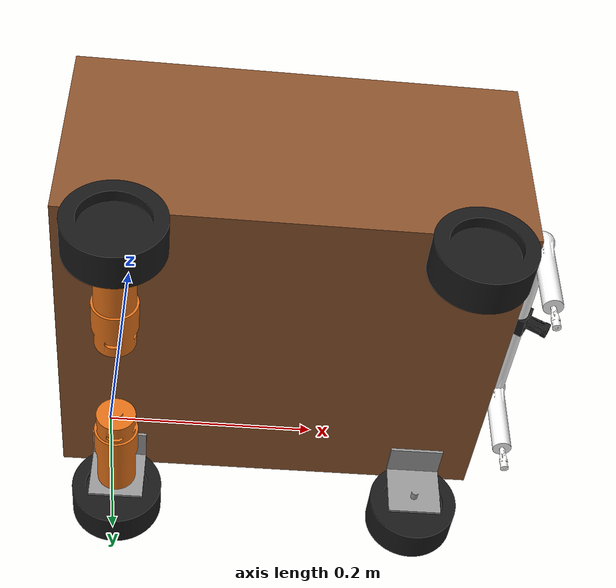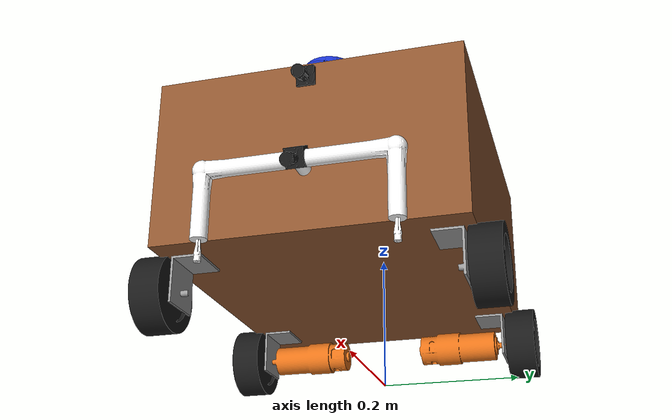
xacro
<?xml version="1.0"?>
<robot name="agridoc" xmlns:xacro="http://www.ros.org/wiki/xacro">

  <!-- Meshes come from the Fusion 360 model. They are in mm and use the CAD origin,
       which is the rear bottom corner of the robot. -->
  <xacro:property name="mesh_scale" value="0.001 0.001 0.001"/>
  <xacro:property name="mesh_dir" value="package://agridoc_description/meshes"/>

  <xacro:property name="wheel_radius" value="0.05"/>
  <xacro:property name="wheel_width" value="0.04"/>
  <xacro:property name="wheel_y" value="0.21"/>
  <!-- distance from the rear (driven) axle to the front (free) axle -->
  <xacro:property name="axle_gap" value="0.34"/>
  <!-- rear axle position in the CAD frame -->
  <xacro:property name="axle_x" value="0.065"/>

  <material name="wood"><color rgba="0.55 0.33 0.18 1"/></material>
  <material name="white"><color rgba="1 1 1 1"/></material>
  <material name="grey"><color rgba="0.6 0.6 0.6 1"/></material>
  <material name="dark_grey"><color rgba="0.25 0.25 0.25 1"/></material>
  <material name="orange"><color rgba="0.9 0.45 0.1 1"/></material>
  <material name="black"><color rgba="0.1 0.1 0.1 1"/></material>
  <material name="blue"><color rgba="0.1 0.2 0.8 1"/></material>

  <xacro:macro name="body_part" params="name material">
    <visual>
      <geometry><mesh filename="${mesh_dir}/${name}.stl" scale="${mesh_scale}"/></geometry>
      <material name="${material}"/>
    </visual>
  </xacro:macro>

  <link name="base_footprint"/>

  <!-- base_link is the middle of the rear axle, the robot turns about this point -->
  <link name="base_link"/>
  <joint name="base_joint" type="fixed">
    <parent link="base_footprint"/>
    <child link="base_link"/>
    <origin xyz="0 0 ${wheel_radius}"/>
  </joint>

  <link name="chassis">
    <xacro:body_part name="box" material="wood"/>
    <xacro:body_part name="pipe" material="white"/>
    <xacro:body_part name="tank" material="grey"/>
    <xacro:body_part name="motors" material="orange"/>
    <xacro:body_part name="brackets" material="grey"/>
    <xacro:body_part name="electronics" material="dark_grey"/>
    <xacro:body_part name="lidar" material="blue"/>
    <xacro:body_part name="disease_camera" material="black"/>
    <xacro:body_part name="weed_camera" material="black"/>
    <collision>
      <origin xyz="0.235 0 0.204"/>
      <geometry><box size="0.47 0.40 0.228"/></geometry>
    </collision>
    <collision>
      <origin xyz="0.370 0 0.345"/>
      <geometry><cylinder radius="0.035" length="0.054"/></geometry>
    </collision>
    <inertial>
      <origin xyz="0.212 0.004 0.194"/>
      <mass value="18.26"/>
      <inertia ixx="0.343" ixy="-0.025" ixz="-0.042" iyy="0.463" iyz="-0.008" izz="0.525"/>
    </inertial>
  </link>
  <joint name="chassis_joint" type="fixed">
    <parent link="base_link"/>
    <child link="chassis"/>
    <origin xyz="${-axle_x} 0 ${-wheel_radius}"/>
  </joint>

  <!-- side is 1 for left and -1 for right -->
  <xacro:macro name="wheel" params="name x side">
    <link name="${name}_wheel">
      <visual>
        <origin rpy="0 0 ${(1 - side) * pi / 2}"/>
        <geometry><mesh filename="${mesh_dir}/wheel.stl" scale="${mesh_scale}"/></geometry>
        <material name="black"/>
      </visual>
      <collision>
        <origin rpy="${pi / 2} 0 0"/>
        <geometry><cylinder radius="${wheel_radius}" length="${wheel_width}"/></geometry>
      </collision>
      <inertial>
        <mass value="0.23"/>
        <inertia ixx="0.000186" ixy="0" ixz="0" iyy="0.000326" iyz="0" izz="0.000186"/>
      </inertial>
    </link>
    <joint name="${name}_wheel_joint" type="continuous">
      <parent link="base_link"/>
      <child link="${name}_wheel"/>
      <origin xyz="${x} ${side * wheel_y} 0"/>
      <axis xyz="0 1 0"/>
    </joint>
  </xacro:macro>

  <!-- rear wheels have the motors, front wheels only spin on a fixed axle -->
  <xacro:wheel name="rear_left" x="0" side="1"/>
  <xacro:wheel name="rear_right" x="0" side="-1"/>
  <xacro:wheel name="front_left" x="${axle_gap}" side="1"/>
  <xacro:wheel name="front_right" x="${axle_gap}" side="-1"/>

  <!-- sensor frames, positions are in the CAD frame -->
  <link name="lidar_link"/>
  <joint name="lidar_joint" type="fixed">
    <parent link="chassis"/>
    <child link="lidar_link"/>
    <!-- on the spin axis, the middle of the round top. The motor end points forward -->
    <origin xyz="0.370 0 0.345"/>
  </joint>

  <!-- BNO055 sits on the floor of the electronics box -->
  <link name="imu_link"/>
  <joint name="imu_joint" type="fixed">
    <parent link="chassis"/>
    <child link="imu_link"/>
    <origin xyz="0.2 0 0.11"/>
  </joint>

  <!-- NEO-M8N GPS on the lid at the back, away from the lidar motor. Its patch antenna faces up -->
  <link name="gps_link">
    <visual>
      <geometry><box size="0.04 0.04 0.012"/></geometry>
      <material name="blue"/>
    </visual>
  </link>
  <joint name="gps_joint" type="fixed">
    <parent link="chassis"/>
    <child link="gps_link"/>
    <origin xyz="0.1 0 0.324"/>
  </joint>

  <!-- top camera looks ahead at the plants, the lower one is tilted down at the ground for weeds -->
  <xacro:macro name="camera" params="name x z pitch">
    <link name="${name}_link"/>
    <joint name="${name}_joint" type="fixed">
      <parent link="chassis"/>
      <child link="${name}_link"/>
      <origin xyz="${x} 0 ${z}" rpy="0 ${pitch} 0"/>
    </joint>
    <link name="${name}_optical_link"/>
    <joint name="${name}_optical_joint" type="fixed">
      <parent link="${name}_link"/>
      <child link="${name}_optical_link"/>
      <origin rpy="${-pi / 2} 0 ${-pi / 2}"/>
    </joint>
  </xacro:macro>

  <xacro:camera name="disease_camera" x="0.502" z="0.299" pitch="0"/>
  <xacro:camera name="weed_camera" x="0.534" z="0.167" pitch="0.6"/>

  <xacro:include filename="$(find agridoc_description)/urdf/agridoc.gazebo.xacro"/>

</robot>
